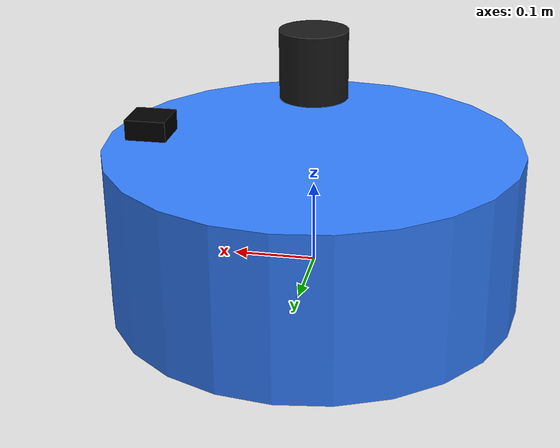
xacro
<?xml version="1.0"?>
<robot xmlns:xacro="http://www.ros.org/wiki/xacro" name="swarm_robot">

  <!-- Robot parameters -->
  <xacro:property name="robot_radius" value="0.25"/>
  <xacro:property name="robot_height" value="0.2"/>
  <xacro:property name="wheel_radius" value="0.05"/>
  <xacro:property name="wheel_width" value="0.025"/>
  <xacro:property name="wheel_separation" value="0.3"/>

  <!-- Robot arguments -->
  <xacro:arg name="robot_name" default="robot"/>
  <xacro:arg name="robot_color" default="blue"/>

  <!-- Base link -->
  <link name="$(arg robot_name)/base_link">
    <visual>
      <origin xyz="0 0 0.05" rpy="0 0 0"/>
      <geometry>
        <cylinder radius="${robot_radius}" length="${robot_height}"/>
      </geometry>
      <material name="robot_color">
        <color rgba="0.2 0.5 1.0 1.0"/> <!-- Blue by default -->
      </material>
    </visual>

    <collision>
      <origin xyz="0 0 0.05" rpy="0 0 0"/>
      <geometry>
        <cylinder radius="${robot_radius}" length="${robot_height}"/>
      </geometry>
    </collision>

    <inertial>
      <origin xyz="0 0 0.05" rpy="0 0 0"/>
      <mass value="5.0"/>
      <inertia
        ixx="0.1" ixy="0.0" ixz="0.0"
        iyy="0.1" iyz="0.0"
        izz="0.15"/>
    </inertial>
  </link>

  <!-- Left wheel -->
  <link name="$(arg robot_name)/left_wheel">
    <visual>
      <origin xyz="0 0 0" rpy="1.5708 0 0"/>
      <geometry>
        <cylinder radius="${wheel_radius}" length="${wheel_width}"/>
      </geometry>
      <material name="wheel_color">
        <color rgba="0.3 0.3 0.3 1.0"/>
      </material>
    </visual>

    <collision>
      <origin xyz="0 0 0" rpy="1.5708 0 0"/>
      <geometry>
        <cylinder radius="${wheel_radius}" length="${wheel_width}"/>
      </geometry>
    </collision>

    <inertial>
      <origin xyz="0 0 0" rpy="1.5708 0 0"/>
      <mass value="0.5"/>
      <inertia
        ixx="0.001" ixy="0.0" ixz="0.0"
        iyy="0.001" iyz="0.0"
        izz="0.001"/>
    </inertial>
  </link>

  <!-- Right wheel -->
  <link name="$(arg robot_name)/right_wheel">
    <visual>
      <origin xyz="0 0 0" rpy="1.5708 0 0"/>
      <geometry>
        <cylinder radius="${wheel_radius}" length="${wheel_width}"/>
      </geometry>
      <material name="wheel_color">
        <color rgba="0.3 0.3 0.3 1.0"/>
      </material>
    </visual>

    <collision>
      <origin xyz="0 0 0" rpy="1.5708 0 0"/>
      <geometry>
        <cylinder radius="${wheel_radius}" length="${wheel_width}"/>
      </geometry>
    </collision>

    <inertial>
      <origin xyz="0 0 0" rpy="1.5708 0 0"/>
      <mass value="0.5"/>
      <inertia
        ixx="0.001" ixy="0.0" ixz="0.0"
        iyy="0.001" iyz="0.0"
        izz="0.001"/>
    </inertial>
  </link>

  <!-- Camera sensor -->
  <link name="$(arg robot_name)/camera_link">
    <visual>
      <origin xyz="0 0 0" rpy="0 0 0"/>
      <geometry>
        <box size="0.05 0.05 0.05"/>
      </geometry>
      <material name="camera_color">
        <color rgba="0.0 0.0 0.0 1.0"/>
      </material>
    </visual>

    <collision>
      <origin xyz="0 0 0" rpy="0 0 0"/>
      <geometry>
        <box size="0.05 0.05 0.05"/>
      </geometry>
    </collision>

    <inertial>
      <origin xyz="0 0 0" rpy="0 0 0"/>
      <mass value="0.1"/>
      <inertia
        ixx="0.0001" ixy="0.0" ixz="0.0"
        iyy="0.0001" iyz="0.0"
        izz="0.0001"/>
    </inertial>
  </link>

  <!-- Lidar sensor -->
  <link name="$(arg robot_name)/lidar_link">
    <visual>
      <origin xyz="0 0 0" rpy="0 0 0"/>
      <geometry>
        <cylinder radius="0.04" length="0.08"/>
      </geometry>
      <material name="lidar_color">
        <color rgba="0.1 0.1 0.1 1.0"/>
      </material>
    </visual>

    <collision>
      <origin xyz="0 0 0" rpy="0 0 0"/>
      <geometry>
        <cylinder radius="0.04" length="0.08"/>
      </geometry>
    </collision>

    <inertial>
      <origin xyz="0 0 0" rpy="0 0 0"/>
      <mass value="0.1"/>
      <inertia
        ixx="0.0001" ixy="0.0" ixz="0.0"
        iyy="0.0001" iyz="0.0"
        izz="0.0001"/>
    </inertial>
  </link>

  <!-- Joint: Base to left wheel -->
  <joint name="$(arg robot_name)/left_wheel_joint" type="continuous">
    <parent link="$(arg robot_name)/base_link"/>
    <child link="$(arg robot_name)/left_wheel"/>
    <origin xyz="0 ${wheel_separation/2} 0" rpy="0 0 0"/>
    <axis xyz="0 1 0"/>
  </joint>

  <!-- Joint: Base to right wheel -->
  <joint name="$(arg robot_name)/right_wheel_joint" type="continuous">
    <parent link="$(arg robot_name)/base_link"/>
    <child link="$(arg robot_name)/right_wheel"/>
    <origin xyz="0 -${wheel_separation/2} 0" rpy="0 0 0"/>
    <axis xyz="0 1 0"/>
  </joint>

  <!-- Joint: Base to camera -->
  <joint name="$(arg robot_name)/camera_joint" type="fixed">
    <parent link="$(arg robot_name)/base_link"/>
    <child link="$(arg robot_name)/camera_link"/>
    <origin xyz="0.2 0 0.15" rpy="0 0 0"/>
  </joint>

  <!-- Joint: Base to lidar -->
  <joint name="$(arg robot_name)/lidar_joint" type="fixed">
    <parent link="$(arg robot_name)/base_link"/>
    <child link="$(arg robot_name)/lidar_link"/>
    <origin xyz="0 0 0.25" rpy="0 0 0"/>
  </joint>

  <!-- Gazebo plugins -->
  <gazebo>
    <!-- Differential drive plugin -->
    <plugin name="differential_drive_controller" filename="libgazebo_ros_diff_drive.so">
      <update_rate>50</update_rate>
      <left_joint>$(arg robot_name)/left_wheel_joint</left_joint>
      <right_joint>$(arg robot_name)/right_wheel_joint</right_joint>
      <wheel_separation>${wheel_separation}</wheel_separation>
      <wheel_diameter>${2*wheel_radius}</wheel_diameter>
      <max_wheel_torque>20</max_wheel_torque>
      <max_wheel_acceleration>1.0</max_wheel_acceleration>
      <command_topic>$(arg robot_name)/cmd_vel</command_topic>
      <odometry_topic>$(arg robot_name)/odom</odometry_topic>
      <odometry_frame>$(arg robot_name)/odom</odometry_frame>
      <robot_base_frame>$(arg robot_name)/base_link</robot_base_frame>
      <publish_odom>true</publish_odom>
      <publish_odom_tf>true</publish_odom_tf>
      <publish_wheel_tf>false</publish_wheel_tf>
    </plugin>
  </gazebo>

  <!-- Camera sensor plugin -->
  <gazebo reference="$(arg robot_name)/camera_link">
    <sensor type="camera" name="camera">
      <update_rate>30.0</update_rate>
      <camera name="head">
        <horizontal_fov>1.3962634</horizontal_fov>
        <image>
          <width>640</width>
          <height>480</height>
          <format>R8G8B8</format>
        </image>
        <clip>
          <near>0.02</near>
          <far>300</far>
        </clip>
      </camera>
      <plugin name="camera_controller" filename="libgazebo_ros_camera.so">
        <frame_name>$(arg robot_name)/camera_link</frame_name>
        <topic_name>$(arg robot_name)/camera/image_raw</topic_name>
        <camera_info_topic_name>$(arg robot_name)/camera/camera_info</camera_info_topic_name>
      </plugin>
    </sensor>
  </gazebo>

  <!-- Lidar sensor plugin -->
  <gazebo reference="$(arg robot_name)/lidar_link">
    <sensor type="ray" name="laser">
      <pose>0 0 0 0 0 0</pose>
      <visualize>false</visualize>
      <update_rate>10</update_rate>
      <ray>
        <scan>
          <horizontal>
            <samples>360</samples>
            <resolution>1</resolution>
            <min_angle>-3.14159</min_angle>
            <max_angle>3.14159</max_angle>
          </horizontal>
        </scan>
        <range>
          <min>0.12</min>
          <max>12.0</max>
          <resolution>0.01</resolution>
        </range>
        <noise>
          <type>gaussian</type>
          <mean>0.0</mean>
          <stddev>0.01</stddev>
        </noise>
      </ray>
      <plugin name="gazebo_ros_laser" filename="libgazebo_ros_ray_sensor.so">
        <ros>
          <namespace>/$(arg robot_name)</namespace>
          <remapping>~/out:=scan</remapping>
        </ros>
        <output_type>sensor_msgs/LaserScan</output_type>
        <frame_name>$(arg robot_name)/lidar_link</frame_name>
      </plugin>
    </sensor>
  </gazebo>

  <!-- Robot color materials -->
  <gazebo reference="$(arg robot_name)/base_link">
    <material>Gazebo/Blue</material>
  </gazebo>

</robot>
